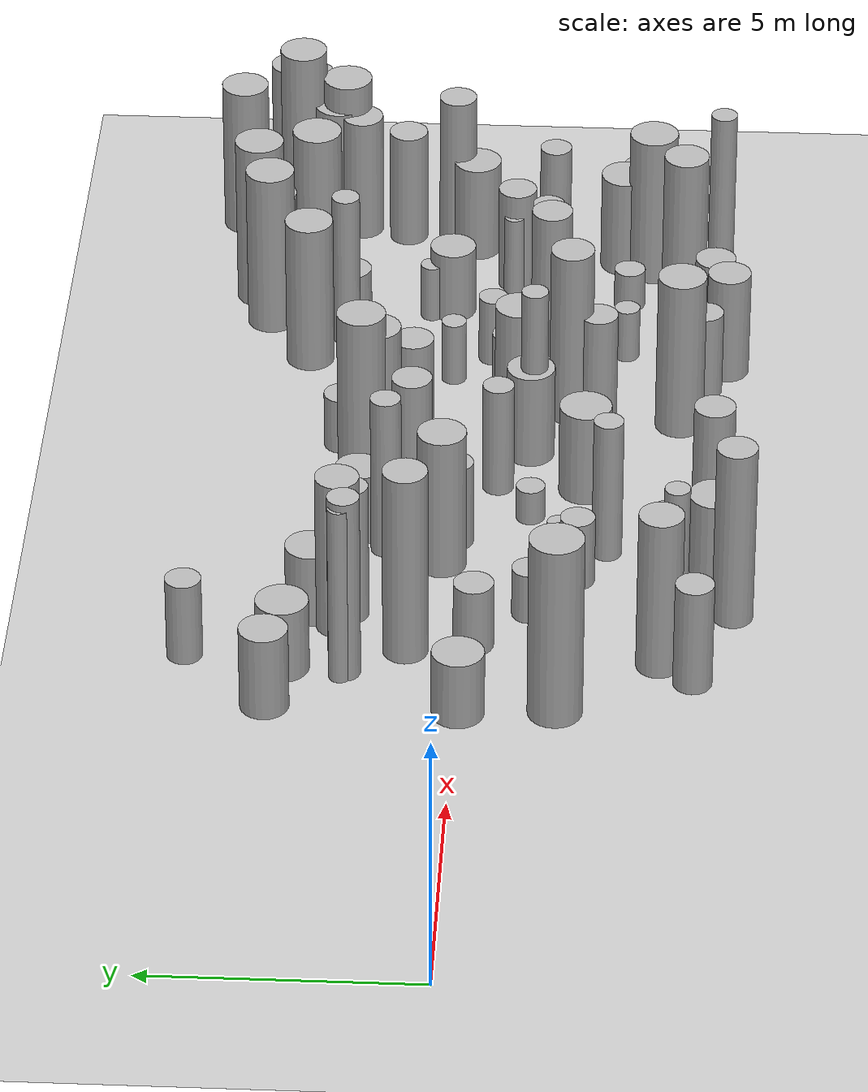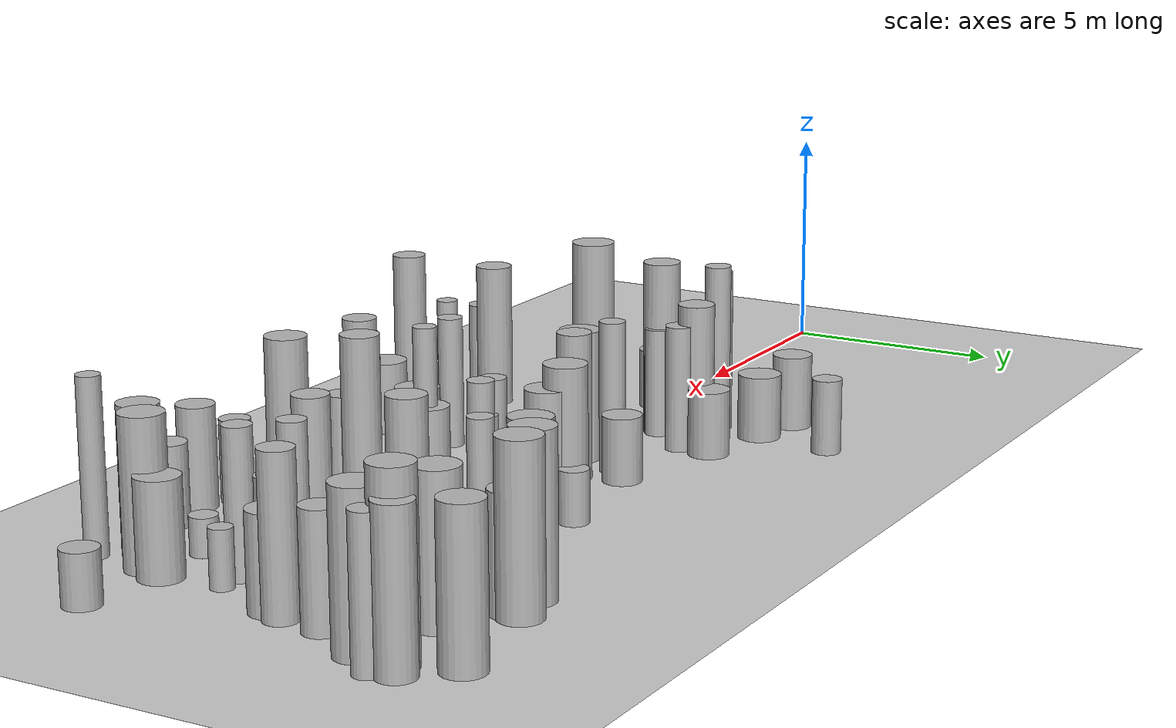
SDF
<sdf version="1.4">
 <world name="default">
  <include><uri>model://ground_plane</uri></include>
  <include><uri>model://sun</uri></include>
  <model name="forest">
   <static>true</static>
   <link name="cylinder7">
    <pose>21.736004291371536 -0.49966305445489834 0.8340649245499148 0 0 0</pose>
    <visual name="visual">
     <geometry>
      <cylinder><radius>0.20075408702600467</radius><length>1.6681298490998295</length></cylinder>
     </geometry>
    </visual>
    <collision name="collision">
     <geometry>
      <cylinder><radius>0.20075408702600467</radius><length>1.6681298490998295</length></cylinder>
     </geometry>
     <max_contacts>0</max_contacts>
    </collision>
   </link>
   <link name="cylinder8">
    <pose>10.914736461077815 -3.8365037087492793 1.3696143019365636 0 0 0</pose>
    <visual name="visual">
     <geometry>
      <cylinder><radius>0.23327978234521513</radius><length>2.7392286038731273</length></cylinder>
     </geometry>
    </visual>
    <collision name="collision">
     <geometry>
      <cylinder><radius>0.23327978234521513</radius><length>2.7392286038731273</length></cylinder>
     </geometry>
     <max_contacts>0</max_contacts>
    </collision>
   </link>
   <link name="cylinder9">
    <pose>14.853554070247391 -0.47774101991207996 1.1286734602600519 0 0 0</pose>
    <visual name="visual">
     <geometry>
      <cylinder><radius>0.2918521224820633</radius><length>2.2573469205201038</length></cylinder>
     </geometry>
    </visual>
    <collision name="collision">
     <geometry>
      <cylinder><radius>0.2918521224820633</radius><length>2.2573469205201038</length></cylinder>
     </geometry>
     <max_contacts>0</max_contacts>
    </collision>
   </link>
   <link name="cylinder15">
    <pose>13.033938769299283 0.21987636582843706 0.8772535603588143 0 0 0</pose>
    <visual name="visual">
     <geometry>
      <cylinder><radius>0.32073914165574224</radius><length>1.7545071207176286</length></cylinder>
     </geometry>
    </visual>
    <collision name="collision">
     <geometry>
      <cylinder><radius>0.32073914165574224</radius><length>1.7545071207176286</length></cylinder>
     </geometry>
     <max_contacts>0</max_contacts>
    </collision>
   </link>
   <link name="cylinder18">
    <pose>16.003366030238105 -1.0349550631368478 0.9583371634974845 0 0 0</pose>
    <visual name="visual">
     <geometry>
      <cylinder><radius>0.4483700065809316</radius><length>1.916674326994969</length></cylinder>
     </geometry>
    </visual>
    <collision name="collision">
     <geometry>
      <cylinder><radius>0.4483700065809316</radius><length>1.916674326994969</length></cylinder>
     </geometry>
     <max_contacts>0</max_contacts>
    </collision>
   </link>
   <link name="cylinder21">
    <pose>19.082661327178926 3.3031229890450327 1.54602594841249 0 0 0</pose>
    <visual name="visual">
     <geometry><cylinder><radius>0.4556177747040008</radius><length>3.09205189682498</length></cylinder></geometry>
    </visual>
    <collision name="collision">
     <geometry><cylinder><radius>0.4556177747040008</radius><length>3.09205189682498</length></cylinder></geometry>
     <max_contacts>0</max_contacts>
    </collision>
   </link>
   <link name="cylinder22">
    <pose>24.895594062170886 3.5237761898894107 1.4979125226563086 0 0 0</pose>
    <visual name="visual">
     <geometry>
      <cylinder><radius>0.2958457283532197</radius><length>2.995825045312617</length></cylinder>
     </geometry>
    </visual>
    <collision name="collision">
     <geometry>
      <cylinder><radius>0.2958457283532197</radius><length>2.995825045312617</length></cylinder>
     </geometry>
     <max_contacts>0</max_contacts>
    </collision>
   </link>
   <link name="cylinder24">
    <pose>22.5454302663233 -3.163153579336604 1.5665030020215478 0 0 0</pose>
    <visual name="visual">
     <geometry>
      <cylinder><radius>0.46524977752787494</radius><length>3.1330060040430956</length></cylinder>
     </geometry>
    </visual>
    <collision name="collision">
     <geometry>
      <cylinder><radius>0.46524977752787494</radius><length>3.1330060040430956</length></cylinder>
     </geometry>
     <max_contacts>0</max_contacts>
    </collision>
   </link>
   <link name="cylinder26">
    <pose>20.730629949656297 1.050386423845846 0.5811819108139609 0 0 0</pose>
    <visual name="visual">
     <geometry>
      <cylinder><radius>0.21628738374586193</radius><length>1.1623638216279217</length></cylinder>
     </geometry>
    </visual>
    <collision name="collision">
     <geometry>
      <cylinder><radius>0.21628738374586193</radius><length>1.1623638216279217</length></cylinder>
     </geometry>
     <max_contacts>0</max_contacts>
    </collision>
   </link>
   <link name="cylinder27">
    <pose>11.89219978713949 -2.0400406789135896 0.6957856865702874 0 0 0</pose>
    <visual name="visual">
     <geometry>
      <cylinder><radius>0.3196928371164899</radius><length>1.3915713731405748</length></cylinder>
     </geometry>
    </visual>
    <collision name="collision">
     <geometry>
      <cylinder><radius>0.3196928371164899</radius><length>1.3915713731405748</length></cylinder>
     </geometry>
     <max_contacts>0</max_contacts>
    </collision>
   </link>
   <link name="cylinder34">
    <pose>23.639740567221693 1.6571022610729358 1.1962088232181292 0 0 0</pose>
    <visual name="visual">
     <geometry>
      <cylinder><radius>0.3714651775510792</radius><length>2.3924176464362583</length></cylinder>
     </geometry>
    </visual>
    <collision name="collision">
     <geometry>
      <cylinder><radius>0.3714651775510792</radius><length>2.3924176464362583</length></cylinder>
     </geometry>
     <max_contacts>0</max_contacts>
    </collision>
   </link>
   <link name="cylinder35">
    <pose>15.758543139333042 2.1095232941430435 1.585341498305851 0 0 0</pose>
    <visual name="visual">
     <geometry>
      <cylinder><radius>0.45787230308438437</radius><length>3.170682996611702</length></cylinder>
     </geometry>
    </visual>
    <collision name="collision">
     <geometry>
      <cylinder><radius>0.45787230308438437</radius><length>3.170682996611702</length></cylinder>
     </geometry>
     <max_contacts>0</max_contacts>
    </collision>
   </link>
   <link name="cylinder44">
    <pose>23.51437637090868 0.6806047675914328 1.6363686987049586 0 0 0</pose>
    <visual name="visual">
     <geometry>
      <cylinder><radius>0.3613377163619469</radius><length>3.272737397409917</length></cylinder>
     </geometry>
    </visual>
    <collision name="collision">
     <geometry>
      <cylinder><radius>0.3613377163619469</radius><length>3.272737397409917</length></cylinder>
     </geometry>
     <max_contacts>0</max_contacts>
    </collision>
   </link>
   <link name="cylinder47">
    <pose>10.79666071523338 -1.2056584372661083 0.5084493877864421 0 0 0</pose>
    <visual name="visual">
     <geometry>
      <cylinder><radius>0.31588122362945537</radius><length>1.0168987755728842</length></cylinder>
     </geometry>
    </visual>
    <collision name="collision">
     <geometry>
      <cylinder><radius>0.31588122362945537</radius><length>1.0168987755728842</length></cylinder>
     </geometry>
     <max_contacts>0</max_contacts>
    </collision>
   </link>
   <link name="cylinder49">
    <pose>7.6879416544727945 -0.06949785690728572 0.668260202787761 0 0 0</pose>
    <visual name="visual">
     <geometry>
      <cylinder><radius>0.4723194740101033</radius><length>1.336520405575522</length></cylinder>
     </geometry>
    </visual>
    <collision name="collision">
     <geometry>
      <cylinder><radius>0.4723194740101033</radius><length>1.336520405575522</length></cylinder>
     </geometry>
     <max_contacts>0</max_contacts>
    </collision>
   </link>
   <link name="cylinder52">
    <pose>24.189380151882077 3.0545982899948125 1.319124420648759 0 0 0</pose>
    <visual name="visual">
     <geometry>
      <cylinder><radius>0.4708666080646746</radius><length>2.638248841297518</length></cylinder>
     </geometry>
    </visual>
    <collision name="collision">
     <geometry>
      <cylinder><radius>0.4708666080646746</radius><length>2.638248841297518</length></cylinder>
     </geometry>
     <max_contacts>0</max_contacts>
    </collision>
   </link>
   <link name="cylinder62">
    <pose>22.81225635890371 -2.625337753581205 1.021754991340225 0 0 0</pose>
    <visual name="visual">
     <geometry>
      <cylinder><radius>0.47015913966621276</radius><length>2.04350998268045</length></cylinder>
     </geometry>
    </visual>
    <collision name="collision">
     <geometry>
      <cylinder><radius>0.47015913966621276</radius><length>2.04350998268045</length></cylinder>
     </geometry>
     <max_contacts>0</max_contacts>
    </collision>
   </link>
   <link name="cylinder65">
    <pose>9.52588501337528 0.9576877747168311 1.943984391102354 0 0 0</pose>
    <visual name="visual">
     <geometry>
      <cylinder><radius>0.40799603967908904</radius><length>3.887968782204708</length></cylinder>
     </geometry>
    </visual>
    <collision name="collision">
     <geometry>
      <cylinder><radius>0.40799603967908904</radius><length>3.887968782204708</length></cylinder>
     </geometry>
     <max_contacts>0</max_contacts>
    </collision>
   </link>
   <link name="cylinder67">
    <pose>19.270884500488513 -0.1999504821009923 0.6958926026865883 0 0 0</pose>
    <visual name="visual">
     <geometry>
      <cylinder><radius>0.2805599144375513</radius><length>1.3917852053731765</length></cylinder>
     </geometry>
    </visual>
    <collision name="collision">
     <geometry>
      <cylinder><radius>0.2805599144375513</radius><length>1.3917852053731765</length></cylinder>
     </geometry>
     <max_contacts>0</max_contacts>
    </collision>
   </link>
   <link name="cylinder68">
    <pose>21.318692989701752 -2.758823897062268 0.404940197494045 0 0 0</pose>
    <visual name="visual">
     <geometry>
      <cylinder><radius>0.29693361762981957</radius><length>0.80988039498809</length></cylinder>
     </geometry>
    </visual>
    <collision name="collision">
     <geometry>
      <cylinder><radius>0.29693361762981957</radius><length>0.80988039498809</length></cylinder>
     </geometry>
     <max_contacts>0</max_contacts>
    </collision>
   </link>
   <link name="cylinder70">
    <pose>23.981804374284458 4.8808893762459356 1.5759080402624706 0 0 0</pose>
    <visual name="visual">
     <geometry>
      <cylinder><radius>0.4524087115823557</radius><length>3.151816080524941</length></cylinder>
     </geometry>
    </visual>
    <collision name="collision">
     <geometry>
      <cylinder><radius>0.4524087115823557</radius><length>3.151816080524941</length></cylinder>
     </geometry>
     <max_contacts>0</max_contacts>
    </collision>
   </link>
   <link name="cylinder75">
    <pose>12.285998100978205 0.44289316514971144 1.4467364115683354 0 0 0</pose>
    <visual name="visual">
     <geometry>
      <cylinder><radius>0.4491158269163352</radius><length>2.893472823136671</length></cylinder>
     </geometry>
    </visual>
    <collision name="collision">
     <geometry>
      <cylinder><radius>0.4491158269163352</radius><length>2.893472823136671</length></cylinder>
     </geometry>
     <max_contacts>0</max_contacts>
    </collision>
   </link>
   <link name="cylinder79">
    <pose>23.875869095028435 2.5764015123100936 1.2880640875802067 0 0 0</pose>
    <visual name="visual">
     <geometry>
      <cylinder><radius>0.40085486248108526</radius><length>2.5761281751604135</length></cylinder>
     </geometry>
    </visual>
    <collision name="collision">
     <geometry>
      <cylinder><radius>0.40085486248108526</radius><length>2.5761281751604135</length></cylinder>
     </geometry>
     <max_contacts>0</max_contacts>
    </collision>
   </link>
   <link name="cylinder81">
    <pose>13.494713009334156 -4.465588300839338 1.4067591082952307 0 0 0</pose>
    <visual name="visual">
     <geometry>
      <cylinder><radius>0.3812167118206994</radius><length>2.8135182165904613</length></cylinder>
     </geometry>
    </visual>
    <collision name="collision">
     <geometry>
      <cylinder><radius>0.3812167118206994</radius><length>2.8135182165904613</length></cylinder>
     </geometry>
     <max_contacts>0</max_contacts>
    </collision>
   </link>
   <link name="cylinder83">
    <pose>15.139345639333854 1.1594362104256062 0.6174595633525808 0 0 0</pose>
    <visual name="visual">
     <geometry>
      <cylinder><radius>0.3080543960184824</radius><length>1.2349191267051616</length></cylinder>
     </geometry>
    </visual>
    <collision name="collision">
     <geometry>
      <cylinder><radius>0.3080543960184824</radius><length>1.2349191267051616</length></cylinder>
     </geometry>
     <max_contacts>0</max_contacts>
    </collision>
   </link>
   <link name="cylinder84">
    <pose>9.315859578121696 -3.5736198615112458 1.6262315979028008 0 0 0</pose>
    <visual name="visual">
     <geometry>
      <cylinder><radius>0.40707819342825735</radius><length>3.2524631958056016</length></cylinder>
     </geometry>
    </visual>
    <collision name="collision">
     <geometry>
      <cylinder><radius>0.40707819342825735</radius><length>3.2524631958056016</length></cylinder>
     </geometry>
     <max_contacts>0</max_contacts>
    </collision>
   </link>
   <link name="cylinder88">
    <pose>17.116260911705616 -3.801376694132834 1.6529892802913362 0 0 0</pose>
    <visual name="visual">
     <geometry>
      <cylinder><radius>0.4542084483008347</radius><length>3.3059785605826724</length></cylinder>
     </geometry>
    </visual>
    <collision name="collision">
     <geometry>
      <cylinder><radius>0.4542084483008347</radius><length>3.3059785605826724</length></cylinder>
     </geometry>
     <max_contacts>0</max_contacts>
    </collision>
   </link>
   <link name="cylinder91">
    <pose>10.64326766857262 2.730819315357367 0.7386741887547783 0 0 0</pose>
    <visual name="visual">
     <geometry>
      <cylinder><radius>0.4574239300209553</radius><length>1.4773483775095566</length></cylinder>
     </geometry>
    </visual>
    <collision name="collision">
     <geometry>
      <cylinder><radius>0.4574239300209553</radius><length>1.4773483775095566</length></cylinder>
     </geometry>
     <max_contacts>0</max_contacts>
    </collision>
   </link>
   <link name="cylinder92">
    <pose>24.754883800228946 4.014134985091335 1.5978121512644732 0 0 0</pose>
    <visual name="visual">
     <geometry>
      <cylinder><radius>0.3995190786073297</radius><length>3.1956243025289464</length></cylinder>
     </geometry>
    </visual>
    <collision name="collision">
     <geometry>
      <cylinder><radius>0.3995190786073297</radius><length>3.1956243025289464</length></cylinder>
     </geometry>
     <max_contacts>0</max_contacts>
    </collision>
   </link>
   <link name="cylinder93">
    <pose>9.787784097102808 1.0143147727902537 1.2169650770407832 0 0 0</pose>
    <visual name="visual">
     <geometry>
      <cylinder><radius>0.2940348147919326</radius><length>2.4339301540815663</length></cylinder>
     </geometry>
    </visual>
    <collision name="collision">
     <geometry>
      <cylinder><radius>0.2940348147919326</radius><length>2.4339301540815663</length></cylinder>
     </geometry>
     <max_contacts>0</max_contacts>
    </collision>
   </link>
   <link name="cylinder96">
    <pose>17.13950595983009 1.2155253800292005 0.880882763529969 0 0 0</pose>
    <visual name="visual">
     <geometry>
      <cylinder><radius>0.3840960285534355</radius><length>1.761765527059938</length></cylinder>
     </geometry>
    </visual>
    <collision name="collision">
     <geometry>
      <cylinder><radius>0.3840960285534355</radius><length>1.761765527059938</length></cylinder>
     </geometry>
     <max_contacts>0</max_contacts>
    </collision>
   </link>
   <link name="cylinder99">
    <pose>22.088131380178453 -1.279707438589016 1.5221204193777027 0 0 0</pose>
    <visual name="visual">
     <geometry>
      <cylinder><radius>0.30013229719420975</radius><length>3.0442408387554054</length></cylinder>
     </geometry>
    </visual>
    <collision name="collision">
     <geometry>
      <cylinder><radius>0.30013229719420975</radius><length>3.0442408387554054</length></cylinder>
     </geometry>
     <max_contacts>0</max_contacts>
    </collision>
   </link>
   <link name="cylinder103">
    <pose>20.267248818742154 -4.412821589530021 0.8790280508820247 0 0 0</pose>
    <visual name="visual">
     <geometry>
      <cylinder><radius>0.38550360461328015</radius><length>1.7580561017640495</length></cylinder>
     </geometry>
    </visual>
    <collision name="collision">
     <geometry>
      <cylinder><radius>0.38550360461328015</radius><length>1.7580561017640495</length></cylinder>
     </geometry>
     <max_contacts>0</max_contacts>
    </collision>
   </link>
   <link name="cylinder105">
    <pose>14.47920625635188 1.3143063965557866 0.21674340851733284 0 0 0</pose>
    <visual name="visual">
     <geometry>
      <cylinder><radius>0.21581332017324223</radius><length>0.4334868170346657</length></cylinder>
     </geometry>
    </visual>
    <collision name="collision">
     <geometry>
      <cylinder><radius>0.21581332017324223</radius><length>0.4334868170346657</length></cylinder>
     </geometry>
     <max_contacts>0</max_contacts>
    </collision>
   </link>
   <link name="cylinder106">
    <pose>22.424943120783148 3.3683418935318734 1.5379945779519284 0 0 0</pose>
    <visual name="visual">
     <geometry><cylinder><radius>0.471680818994294</radius><length>3.075989155903857</length></cylinder></geometry>
    </visual>
    <collision name="collision">
     <geometry><cylinder><radius>0.471680818994294</radius><length>3.075989155903857</length></cylinder></geometry>
     <max_contacts>0</max_contacts>
    </collision>
   </link>
   <link name="cylinder107">
    <pose>20.94113688988935 0.6535641328251014 0.730349436871468 0 0 0</pose>
    <visual name="visual">
     <geometry>
      <cylinder><radius>0.43752563233725494</radius><length>1.460698873742936</length></cylinder>
     </geometry>
    </visual>
    <collision name="collision">
     <geometry>
      <cylinder><radius>0.43752563233725494</radius><length>1.460698873742936</length></cylinder>
     </geometry>
     <max_contacts>0</max_contacts>
    </collision>
   </link>
   <link name="cylinder108">
    <pose>13.893962614632372 -1.1146602577756424 0.34782154365869655 0 0 0</pose>
    <visual name="visual">
     <geometry>
      <cylinder><radius>0.26931264912325314</radius><length>0.6956430873173931</length></cylinder>
     </geometry>
    </visual>
    <collision name="collision">
     <geometry>
      <cylinder><radius>0.26931264912325314</radius><length>0.6956430873173931</length></cylinder>
     </geometry>
     <max_contacts>0</max_contacts>
    </collision>
   </link>
   <link name="cylinder110">
    <pose>7.7510819586495785 3.3597650773901737 0.8345917979552995 0 0 0</pose>
    <visual name="visual">
     <geometry>
      <cylinder><radius>0.4416243301038907</radius><length>1.669183595910599</length></cylinder>
     </geometry>
    </visual>
    <collision name="collision">
     <geometry>
      <cylinder><radius>0.4416243301038907</radius><length>1.669183595910599</length></cylinder>
     </geometry>
     <max_contacts>0</max_contacts>
    </collision>
   </link>
   <link name="cylinder111">
    <pose>19.825323557563294 2.651874386181788 1.593591050303939 0 0 0</pose>
    <visual name="visual">
     <geometry>
      <cylinder><radius>0.2644968624051822</radius><length>3.187182100607878</length></cylinder>
     </geometry>
    </visual>
    <collision name="collision">
     <geometry>
      <cylinder><radius>0.2644968624051822</radius><length>3.187182100607878</length></cylinder>
     </geometry>
     <max_contacts>0</max_contacts>
    </collision>
   </link>
   <link name="cylinder113">
    <pose>22.68134547461731 -1.2803934552953211 0.6073762550327231 0 0 0</pose>
    <visual name="visual">
     <geometry>
      <cylinder><radius>0.24688693951041635</radius><length>1.2147525100654462</length></cylinder>
     </geometry>
    </visual>
    <collision name="collision">
     <geometry>
      <cylinder><radius>0.24688693951041635</radius><length>1.2147525100654462</length></cylinder>
     </geometry>
     <max_contacts>0</max_contacts>
    </collision>
   </link>
   <link name="cylinder118">
    <pose>18.515974843568493 0.5208096356534666 0.6469413533172448 0 0 0</pose>
    <visual name="visual">
     <geometry>
      <cylinder><radius>0.2362523610086094</radius><length>1.2938827066344896</length></cylinder>
     </geometry>
    </visual>
    <collision name="collision">
     <geometry>
      <cylinder><radius>0.2362523610086094</radius><length>1.2938827066344896</length></cylinder>
     </geometry>
     <max_contacts>0</max_contacts>
    </collision>
   </link>
   <link name="cylinder126">
    <pose>12.78754979749128 -2.5546504603712927 1.4513833974456247 0 0 0</pose>
    <visual name="visual">
     <geometry>
      <cylinder><radius>0.2746833193609166</radius><length>2.9027667948912494</length></cylinder>
     </geometry>
    </visual>
    <collision name="collision">
     <geometry>
      <cylinder><radius>0.2746833193609166</radius><length>2.9027667948912494</length></cylinder>
     </geometry>
     <max_contacts>0</max_contacts>
    </collision>
   </link>
   <link name="cylinder129">
    <pose>7.809006484718637 -1.7771612306124673 1.8577665043279405 0 0 0</pose>
    <visual name="visual">
     <geometry>
      <cylinder><radius>0.4916605148265981</radius><length>3.715533008655881</length></cylinder>
     </geometry>
    </visual>
    <collision name="collision">
     <geometry>
      <cylinder><radius>0.4916605148265981</radius><length>3.715533008655881</length></cylinder>
     </geometry>
     <max_contacts>0</max_contacts>
    </collision>
   </link>
   <link name="cylinder132">
    <pose>10.87899532668343 -4.87687300343682 1.836932404117707 0 0 0</pose>
    <visual name="visual">
     <geometry>
      <cylinder><radius>0.36957078869117005</radius><length>3.673864808235414</length></cylinder>
     </geometry>
    </visual>
    <collision name="collision">
     <geometry>
      <cylinder><radius>0.36957078869117005</radius><length>3.673864808235414</length></cylinder>
     </geometry>
     <max_contacts>0</max_contacts>
    </collision>
   </link>
   <link name="cylinder139">
    <pose>16.054548126339483 1.8359683816796615 1.3478372403839267 0 0 0</pose>
    <visual name="visual">
     <geometry>
      <cylinder><radius>0.4508237359971481</radius><length>2.6956744807678534</length></cylinder>
     </geometry>
    </visual>
    <collision name="collision">
     <geometry>
      <cylinder><radius>0.4508237359971481</radius><length>2.6956744807678534</length></cylinder>
     </geometry>
     <max_contacts>0</max_contacts>
    </collision>
   </link>
   <link name="cylinder141">
    <pose>19.485695658548828 -2.7501926924062756 0.5414571507476506 0 0 0</pose>
    <visual name="visual">
     <geometry><cylinder><radius>0.241041702816741</radius><length>1.082914301495301</length></cylinder></geometry>
    </visual>
    <collision name="collision">
     <geometry><cylinder><radius>0.241041702816741</radius><length>1.082914301495301</length></cylinder></geometry>
     <max_contacts>0</max_contacts>
    </collision>
   </link>
   <link name="cylinder143">
    <pose>8.691881878475854 2.074301493189693 1.811846442447635 0 0 0</pose>
    <visual name="visual">
     <geometry>
      <cylinder><radius>0.20848527695421717</radius><length>3.62369288489527</length></cylinder>
     </geometry>
    </visual>
    <collision name="collision">
     <geometry>
      <cylinder><radius>0.20848527695421717</radius><length>3.62369288489527</length></cylinder>
     </geometry>
     <max_contacts>0</max_contacts>
    </collision>
   </link>
   <link name="cylinder145">
    <pose>9.779373276851373 -0.2482575242221161 0.679449837582232 0 0 0</pose>
    <visual name="visual">
     <geometry>
      <cylinder><radius>0.36551931214168865</radius><length>1.358899675164464</length></cylinder>
     </geometry>
    </visual>
    <collision name="collision">
     <geometry>
      <cylinder><radius>0.36551931214168865</radius><length>1.358899675164464</length></cylinder>
     </geometry>
     <max_contacts>0</max_contacts>
    </collision>
   </link>
   <link name="cylinder148">
    <pose>8.923798015631576 3.1164595092949305 0.7325068801852185 0 0 0</pose>
    <visual name="visual">
     <geometry>
      <cylinder><radius>0.47994238397750333</radius><length>1.465013760370437</length></cylinder>
     </geometry>
    </visual>
    <collision name="collision">
     <geometry>
      <cylinder><radius>0.47994238397750333</radius><length>1.465013760370437</length></cylinder>
     </geometry>
     <max_contacts>0</max_contacts>
    </collision>
   </link>
   <link name="cylinder152">
    <pose>9.766234424403073 0.9285350994610253 0.8900834895647107 0 0 0</pose>
    <visual name="visual">
     <geometry>
      <cylinder><radius>0.24261421358977275</radius><length>1.7801669791294215</length></cylinder>
     </geometry>
    </visual>
    <collision name="collision">
     <geometry>
      <cylinder><radius>0.24261421358977275</radius><length>1.7801669791294215</length></cylinder>
     </geometry>
     <max_contacts>0</max_contacts>
    </collision>
   </link>
   <link name="cylinder154">
    <pose>15.998159355382654 -1.0956869023460634 1.796374096370846 0 0 0</pose>
    <visual name="visual">
     <geometry>
      <cylinder><radius>0.24994674372935302</radius><length>3.592748192741692</length></cylinder>
     </geometry>
    </visual>
    <collision name="collision">
     <geometry>
      <cylinder><radius>0.24994674372935302</radius><length>3.592748192741692</length></cylinder>
     </geometry>
     <max_contacts>0</max_contacts>
    </collision>
   </link>
   <link name="cylinder158">
    <pose>17.276333590303146 -2.2570683712943564 1.1589611957802002 0 0 0</pose>
    <visual name="visual">
     <geometry>
      <cylinder><radius>0.35743690141894835</radius><length>2.3179223915604004</length></cylinder>
     </geometry>
    </visual>
    <collision name="collision">
     <geometry>
      <cylinder><radius>0.35743690141894835</radius><length>2.3179223915604004</length></cylinder>
     </geometry>
     <max_contacts>0</max_contacts>
    </collision>
   </link>
   <link name="cylinder159">
    <pose>19.042859093234966 -4.680672785859718 1.1003163421437374 0 0 0</pose>
    <visual name="visual">
     <geometry>
      <cylinder><radius>0.40828858089388953</radius><length>2.200632684287475</length></cylinder>
     </geometry>
    </visual>
    <collision name="collision">
     <geometry>
      <cylinder><radius>0.40828858089388953</radius><length>2.200632684287475</length></cylinder>
     </geometry>
     <max_contacts>0</max_contacts>
    </collision>
   </link>
   <link name="cylinder163">
    <pose>16.14366259319432 2.5171644068416015 0.5707250763959947 0 0 0</pose>
    <visual name="visual">
     <geometry>
      <cylinder><radius>0.3286361156046461</radius><length>1.1414501527919894</length></cylinder>
     </geometry>
    </visual>
    <collision name="collision">
     <geometry>
      <cylinder><radius>0.3286361156046461</radius><length>1.1414501527919894</length></cylinder>
     </geometry>
     <max_contacts>0</max_contacts>
    </collision>
   </link>
   <link name="cylinder165">
    <pose>21.312723768142014 4.402768504562797 1.7403721976543518 0 0 0</pose>
    <visual name="visual">
     <geometry>
      <cylinder><radius>0.46653778852677324</radius><length>3.4807443953087036</length></cylinder>
     </geometry>
    </visual>
    <collision name="collision">
     <geometry>
      <cylinder><radius>0.46653778852677324</radius><length>3.4807443953087036</length></cylinder>
     </geometry>
     <max_contacts>0</max_contacts>
    </collision>
   </link>
   <link name="cylinder178">
    <pose>24.26565304003264 2.8827029098016155 1.5991891036940076 0 0 0</pose>
    <visual name="visual">
     <geometry>
      <cylinder><radius>0.47079866352983746</radius><length>3.198378207388015</length></cylinder>
     </geometry>
    </visual>
    <collision name="collision">
     <geometry>
      <cylinder><radius>0.47079866352983746</radius><length>3.198378207388015</length></cylinder>
     </geometry>
     <max_contacts>0</max_contacts>
    </collision>
   </link>
   <link name="cylinder179">
    <pose>23.252298690508738 0.28371832200444835 1.0002162018547571 0 0 0</pose>
    <visual name="visual">
     <geometry>
      <cylinder><radius>0.45880874377733016</radius><length>2.0004324037095143</length></cylinder>
     </geometry>
    </visual>
    <collision name="collision">
     <geometry>
      <cylinder><radius>0.45880874377733016</radius><length>2.0004324037095143</length></cylinder>
     </geometry>
     <max_contacts>0</max_contacts>
    </collision>
   </link>
   <link name="cylinder183">
    <pose>12.451091623239066 -4.5248245920962304 0.8012872026524381 0 0 0</pose>
    <visual name="visual">
     <geometry>
      <cylinder><radius>0.4888464678428204</radius><length>1.6025744053048763</length></cylinder>
     </geometry>
    </visual>
    <collision name="collision">
     <geometry>
      <cylinder><radius>0.4888464678428204</radius><length>1.6025744053048763</length></cylinder>
     </geometry>
     <max_contacts>0</max_contacts>
    </collision>
   </link>
   <link name="cylinder190">
    <pose>12.717493671831953 -4.723064906432426 0.853865794914652 0 0 0</pose>
    <visual name="visual">
     <geometry>
      <cylinder><radius>0.20712632802441486</radius><length>1.707731589829304</length></cylinder>
     </geometry>
    </visual>
    <collision name="collision">
     <geometry>
      <cylinder><radius>0.20712632802441486</radius><length>1.707731589829304</length></cylinder>
     </geometry>
     <max_contacts>0</max_contacts>
    </collision>
   </link>
   <link name="cylinder191">
    <pose>12.722350757088819 1.4841693109792704 1.6491741106264421 0 0 0</pose>
    <visual name="visual">
     <geometry>
      <cylinder><radius>0.2805297838197248</radius><length>3.2983482212528843</length></cylinder>
     </geometry>
    </visual>
    <collision name="collision">
     <geometry>
      <cylinder><radius>0.2805297838197248</radius><length>3.2983482212528843</length></cylinder>
     </geometry>
     <max_contacts>0</max_contacts>
    </collision>
   </link>
   <link name="cylinder192">
    <pose>19.73819019616846 -1.289907263618495 1.5250594170722533 0 0 0</pose>
    <visual name="visual">
     <geometry>
      <cylinder><radius>0.3852513895605503</radius><length>3.0501188341445067</length></cylinder>
     </geometry>
    </visual>
    <collision name="collision">
     <geometry>
      <cylinder><radius>0.3852513895605503</radius><length>3.0501188341445067</length></cylinder>
     </geometry>
     <max_contacts>0</max_contacts>
    </collision>
   </link>
   <link name="cylinder195">
    <pose>21.868107617397406 -3.8037224699690206 1.5262046679970092 0 0 0</pose>
    <visual name="visual">
     <geometry>
      <cylinder><radius>0.43055738162047585</radius><length>3.0524093359940183</length></cylinder>
     </geometry>
    </visual>
    <collision name="collision">
     <geometry>
      <cylinder><radius>0.43055738162047585</radius><length>3.0524093359940183</length></cylinder>
     </geometry>
     <max_contacts>0</max_contacts>
    </collision>
   </link>
   <link name="cylinder199">
    <pose>13.583780289011102 1.0531821160723922 1.6002017185292337 0 0 0</pose>
    <visual name="visual">
     <geometry>
      <cylinder><radius>0.3712393031214352</radius><length>3.2004034370584673</length></cylinder>
     </geometry>
    </visual>
    <collision name="collision">
     <geometry>
      <cylinder><radius>0.3712393031214352</radius><length>3.2004034370584673</length></cylinder>
     </geometry>
     <max_contacts>0</max_contacts>
    </collision>
   </link>
   <link name="cylinder200">
    <pose>8.795669428853074 -4.189550494317057 1.0776138944726126 0 0 0</pose>
    <visual name="visual">
     <geometry>
      <cylinder><radius>0.3508655101877752</radius><length>2.155227788945225</length></cylinder>
     </geometry>
    </visual>
    <collision name="collision">
     <geometry>
      <cylinder><radius>0.3508655101877752</radius><length>2.155227788945225</length></cylinder>
     </geometry>
     <max_contacts>0</max_contacts>
    </collision>
   </link>
   <link name="cylinder201">
    <pose>10.25700021949045 2.208827196083435 1.614682064702785 0 0 0</pose>
    <visual name="visual">
     <geometry>
      <cylinder><radius>0.39947072171699116</radius><length>3.22936412940557</length></cylinder>
     </geometry>
    </visual>
    <collision name="collision">
     <geometry>
      <cylinder><radius>0.39947072171699116</radius><length>3.22936412940557</length></cylinder>
     </geometry>
     <max_contacts>0</max_contacts>
    </collision>
   </link>
   <link name="cylinder202">
    <pose>12.636904251356228 -1.662063069025609 0.38467002462328237 0 0 0</pose>
    <visual name="visual">
     <geometry>
      <cylinder><radius>0.20322379023168177</radius><length>0.7693400492465647</length></cylinder>
     </geometry>
    </visual>
    <collision name="collision">
     <geometry>
      <cylinder><radius>0.20322379023168177</radius><length>0.7693400492465647</length></cylinder>
     </geometry>
     <max_contacts>0</max_contacts>
    </collision>
   </link>
   <link name="cylinder203">
    <pose>24.685443873756604 -2.9541466352709467 0.5654365750363677 0 0 0</pose>
    <visual name="visual">
     <geometry>
      <cylinder><radius>0.3915321225021222</radius><length>1.1308731500727354</length></cylinder>
     </geometry>
    </visual>
    <collision name="collision">
     <geometry>
      <cylinder><radius>0.3915321225021222</radius><length>1.1308731500727354</length></cylinder>
     </geometry>
     <max_contacts>0</max_contacts>
    </collision>
   </link>
   <link name="cylinder205">
    <pose>18.005500857475198 -0.6086450754390169 0.6880650371004171 0 0 0</pose>
    <visual name="visual">
     <geometry>
      <cylinder><radius>0.37756101002211706</radius><length>1.3761300742008342</length></cylinder>
     </geometry>
    </visual>
    <collision name="collision">
     <geometry>
      <cylinder><radius>0.37756101002211706</radius><length>1.3761300742008342</length></cylinder>
     </geometry>
     <max_contacts>0</max_contacts>
    </collision>
   </link>
   <link name="cylinder206">
    <pose>17.223304700568 -0.7543942671463579 1.250143436305272 0 0 0</pose>
    <visual name="visual">
     <geometry>
      <cylinder><radius>0.4406118174034861</radius><length>2.500286872610544</length></cylinder>
     </geometry>
    </visual>
    <collision name="collision">
     <geometry>
      <cylinder><radius>0.4406118174034861</radius><length>2.500286872610544</length></cylinder>
     </geometry>
     <max_contacts>0</max_contacts>
    </collision>
   </link>
   <link name="cylinder207">
    <pose>20.48936614886481 -1.2003223694144816 1.372850549634654 0 0 0</pose>
    <visual name="visual">
     <geometry>
      <cylinder><radius>0.30212640919123934</radius><length>2.745701099269308</length></cylinder>
     </geometry>
    </visual>
    <collision name="collision">
     <geometry>
      <cylinder><radius>0.30212640919123934</radius><length>2.745701099269308</length></cylinder>
     </geometry>
     <max_contacts>0</max_contacts>
    </collision>
   </link>
   <link name="cylinder208">
    <pose>8.827626422284084 2.005831014094724 1.8870289923358092 0 0 0</pose>
    <visual name="visual">
     <geometry>
      <cylinder><radius>0.29076983478709556</radius><length>3.7740579846716185</length></cylinder>
     </geometry>
    </visual>
    <collision name="collision">
     <geometry>
      <cylinder><radius>0.29076983478709556</radius><length>3.7740579846716185</length></cylinder>
     </geometry>
     <max_contacts>0</max_contacts>
    </collision>
   </link>
   <link name="cylinder215">
    <pose>10.61746859653482 1.9768767749713003 1.3984729805400553 0 0 0</pose>
    <visual name="visual">
     <geometry>
      <cylinder><radius>0.30212452981251514</radius><length>2.7969459610801106</length></cylinder>
     </geometry>
    </visual>
    <collision name="collision">
     <geometry>
      <cylinder><radius>0.30212452981251514</radius><length>2.7969459610801106</length></cylinder>
     </geometry>
     <max_contacts>0</max_contacts>
    </collision>
   </link>
   <link name="cylinder217">
    <pose>17.38690905712287 -1.747317444341455 1.8291226439893826 0 0 0</pose>
    <visual name="visual">
     <geometry>
      <cylinder><radius>0.40763000493649726</radius><length>3.6582452879787652</length></cylinder>
     </geometry>
    </visual>
    <collision name="collision">
     <geometry>
      <cylinder><radius>0.40763000493649726</radius><length>3.6582452879787652</length></cylinder>
     </geometry>
     <max_contacts>0</max_contacts>
    </collision>
   </link>
   <link name="cylinder222">
    <pose>13.244511268933437 2.014529642397247 0.7269546266594018 0 0 0</pose>
    <visual name="visual">
     <geometry>
      <cylinder><radius>0.431667927913283</radius><length>1.4539092533188036</length></cylinder>
     </geometry>
    </visual>
    <collision name="collision">
     <geometry>
      <cylinder><radius>0.431667927913283</radius><length>1.4539092533188036</length></cylinder>
     </geometry>
     <max_contacts>0</max_contacts>
    </collision>
   </link>
   <link name="cylinder223">
    <pose>22.00473415232822 -0.5469173287297435 1.0717089007524934 0 0 0</pose>
    <visual name="visual">
     <geometry>
      <cylinder><radius>0.3669901881622182</radius><length>2.1434178015049867</length></cylinder>
     </geometry>
    </visual>
    <collision name="collision">
     <geometry>
      <cylinder><radius>0.3669901881622182</radius><length>2.1434178015049867</length></cylinder>
     </geometry>
     <max_contacts>0</max_contacts>
    </collision>
   </link>
   <link name="cylinder224">
    <pose>18.320023969681806 -4.254975788710677 0.8844163132585329 0 0 0</pose>
    <visual name="visual">
     <geometry>
      <cylinder><radius>0.3344727706210985</radius><length>1.7688326265170657</length></cylinder>
     </geometry>
    </visual>
    <collision name="collision">
     <geometry>
      <cylinder><radius>0.3344727706210985</radius><length>1.7688326265170657</length></cylinder>
     </geometry>
     <max_contacts>0</max_contacts>
    </collision>
   </link>
   <link name="cylinder225">
    <pose>20.563129456355355 2.589706542417609 0.5632198338884911 0 0 0</pose>
    <visual name="visual">
     <geometry>
      <cylinder><radius>0.3765422907176864</radius><length>1.1264396677769821</length></cylinder>
     </geometry>
    </visual>
    <collision name="collision">
     <geometry>
      <cylinder><radius>0.3765422907176864</radius><length>1.1264396677769821</length></cylinder>
     </geometry>
     <max_contacts>0</max_contacts>
    </collision>
   </link>
   <link name="cylinder226">
    <pose>20.400396469830035 4.1335425979268265 1.6893919827722947 0 0 0</pose>
    <visual name="visual">
     <geometry>
      <cylinder><radius>0.46396133391399785</radius><length>3.3787839655445895</length></cylinder>
     </geometry>
    </visual>
    <collision name="collision">
     <geometry>
      <cylinder><radius>0.46396133391399785</radius><length>3.3787839655445895</length></cylinder>
     </geometry>
     <max_contacts>0</max_contacts>
    </collision>
   </link>
   <link name="cylinder229">
    <pose>22.442392838931916 -4.503753196324722 1.8273279594106115 0 0 0</pose>
    <visual name="visual">
     <geometry>
      <cylinder><radius>0.2486744684740376</radius><length>3.654655918821223</length></cylinder>
     </geometry>
    </visual>
    <collision name="collision">
     <geometry>
      <cylinder><radius>0.2486744684740376</radius><length>3.654655918821223</length></cylinder>
     </geometry>
     <max_contacts>0</max_contacts>
    </collision>
   </link>
   <link name="cylinder230">
    <pose>14.820400136988987 -2.089356027145363 0.9408562813064484 0 0 0</pose>
    <visual name="visual">
     <geometry>
      <cylinder><radius>0.4863571080273386</radius><length>1.8817125626128968</length></cylinder>
     </geometry>
    </visual>
    <collision name="collision">
     <geometry>
      <cylinder><radius>0.4863571080273386</radius><length>1.8817125626128968</length></cylinder>
     </geometry>
     <max_contacts>0</max_contacts>
    </collision>
   </link>
   <link name="cylinder243">
    <pose>24.403514128827652 3.75595575509257 1.8648403279767856 0 0 0</pose>
    <visual name="visual">
     <geometry>
      <cylinder><radius>0.4531026468670501</radius><length>3.729680655953571</length></cylinder>
     </geometry>
    </visual>
    <collision name="collision">
     <geometry>
      <cylinder><radius>0.4531026468670501</radius><length>3.729680655953571</length></cylinder>
     </geometry>
     <max_contacts>0</max_contacts>
    </collision>
   </link>
   <link name="cylinder245">
    <pose>21.184452146601117 4.1329911579879965 1.2021821345313075 0 0 0</pose>
    <visual name="visual">
     <geometry>
      <cylinder><radius>0.4435329348084758</radius><length>2.404364269062615</length></cylinder>
     </geometry>
    </visual>
    <collision name="collision">
     <geometry>
      <cylinder><radius>0.4435329348084758</radius><length>2.404364269062615</length></cylinder>
     </geometry>
     <max_contacts>0</max_contacts>
    </collision>
   </link>
   <link name="cylinder246">
    <pose>12.78768217972926 -3.7776845332508877 0.4652497228716798 0 0 0</pose>
    <visual name="visual">
     <geometry>
      <cylinder><radius>0.4566444165201962</radius><length>0.9304994457433596</length></cylinder>
     </geometry>
    </visual>
    <collision name="collision">
     <geometry>
      <cylinder><radius>0.4566444165201962</radius><length>0.9304994457433596</length></cylinder>
     </geometry>
     <max_contacts>0</max_contacts>
    </collision>
   </link>
   <link name="cylinder248">
    <pose>9.223102659850838 4.895316605925927 0.8302508322208313 0 0 0</pose>
    <visual name="visual">
     <geometry>
      <cylinder><radius>0.32561665293119807</radius><length>1.6605016644416626</length></cylinder>
     </geometry>
    </visual>
    <collision name="collision">
     <geometry>
      <cylinder><radius>0.32561665293119807</radius><length>1.6605016644416626</length></cylinder>
     </geometry>
     <max_contacts>0</max_contacts>
    </collision>
   </link>
  </model>
 </world>
</sdf>
